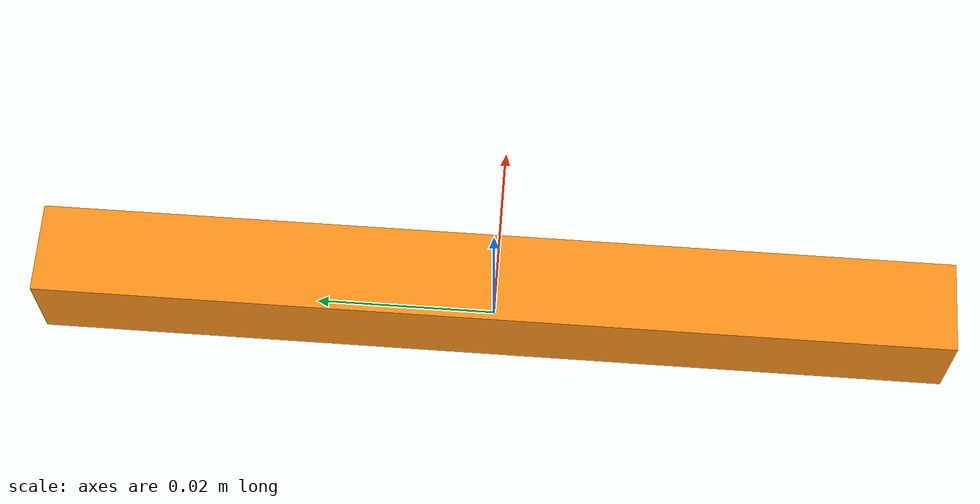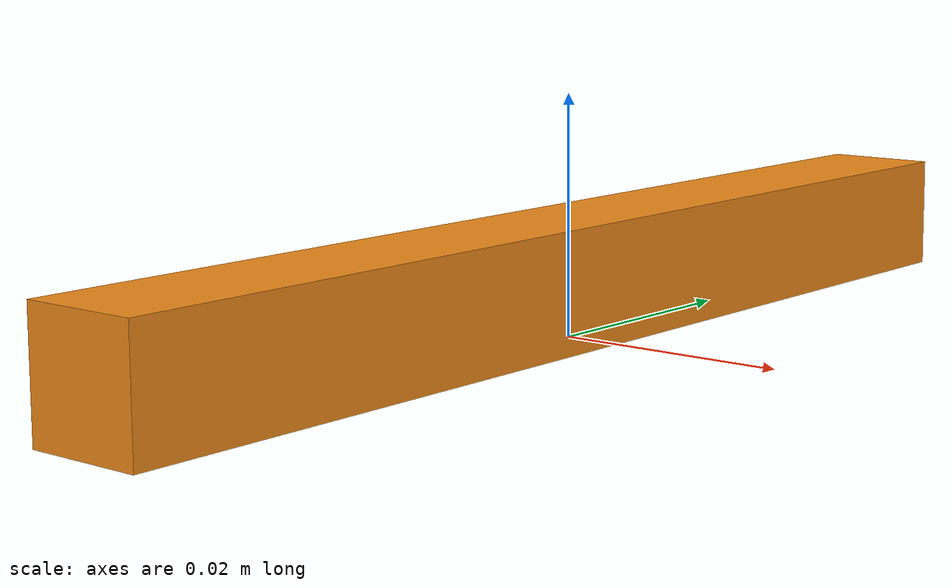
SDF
<?xml version="1.0" ?>
<sdf version="1.6">
  <model name="mathstick10">
    <static>false</static>
    <link name="link">
      <collision name="collision">
        <geometry>
          <mesh>
            <uri>model://mathstick10/meshes/MathStick10.stl</uri>
            <scale>0.001 0.001 0.001</scale>
          </mesh>
        </geometry>
        <surface>
          <friction>
            <ode>
              <mu>100.0</mu> <!-- High coefficient of friction -->
              <mu2>100.0</mu2> <!-- High coefficient of friction -->
            </ode>
          </friction>
        </surface>
      </collision>
      <visual name="visual">
        <geometry>
          <mesh>
            <uri>model://mathstick10/meshes/MathStick10.stl</uri>
            <scale>0.001 0.001 0.001</scale>
          </mesh>
        </geometry>
        <material>
          <script>
            <uri>file://media/materials/scripts/gazebo.material</uri>
            <name>Gazebo/Orange</name> <!-- Change this to the desired color -->
          </script>
        </material>
      </visual>
      <inertial>
        <mass>0.05</mass>
        <inertia>
          <ixx>0.0000420833333333333</ixx>
          <ixy>0.0</ixy>
          <ixz>0.0</ixz>
          <iyy>0.000000833333333333333</iyy>
          <iyz>0.0</iyz>
          <izz>0.0000420833333333333</izz>
        </inertia>
      </inertial>
    </link>
  </model>
</sdf>
